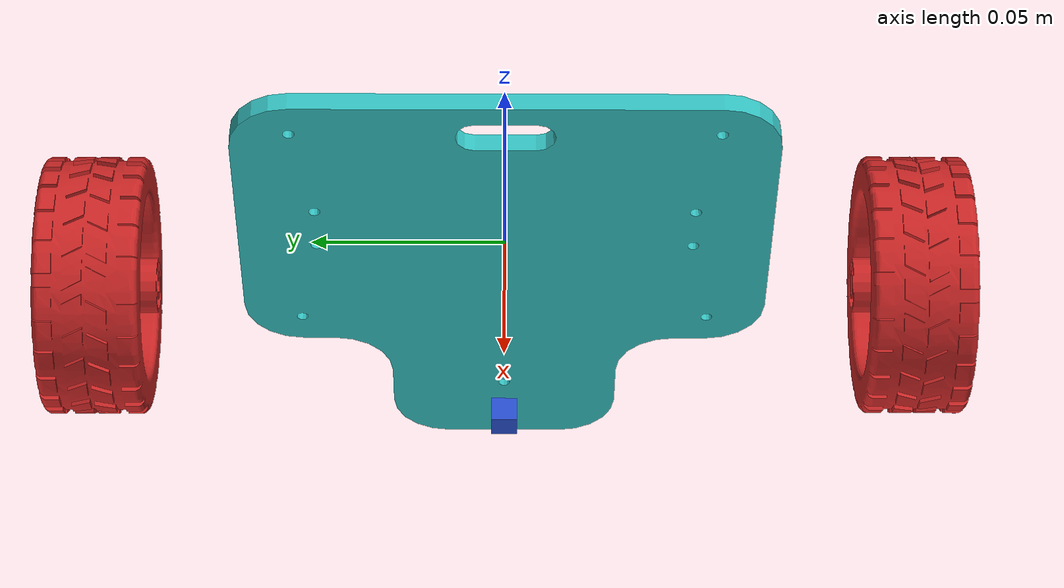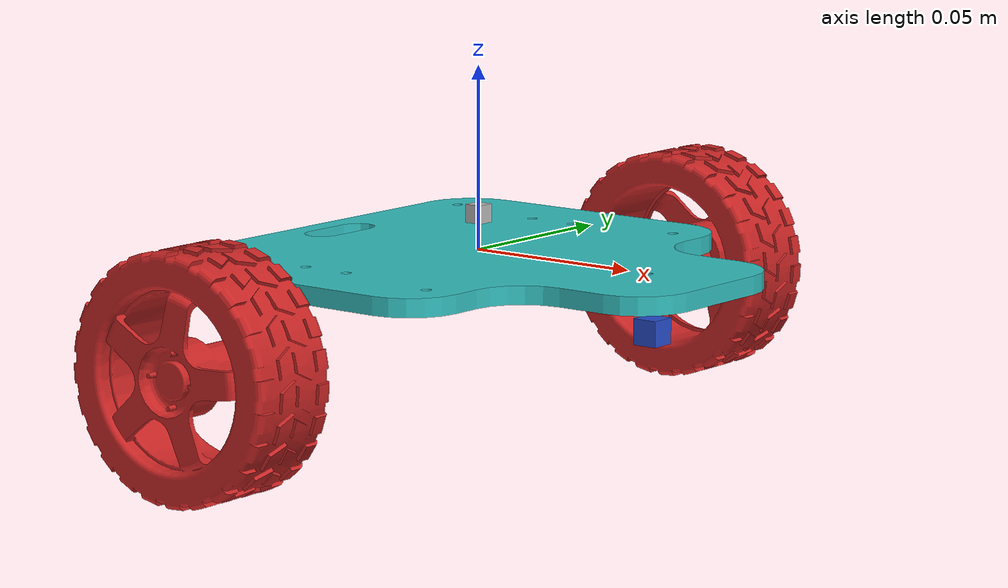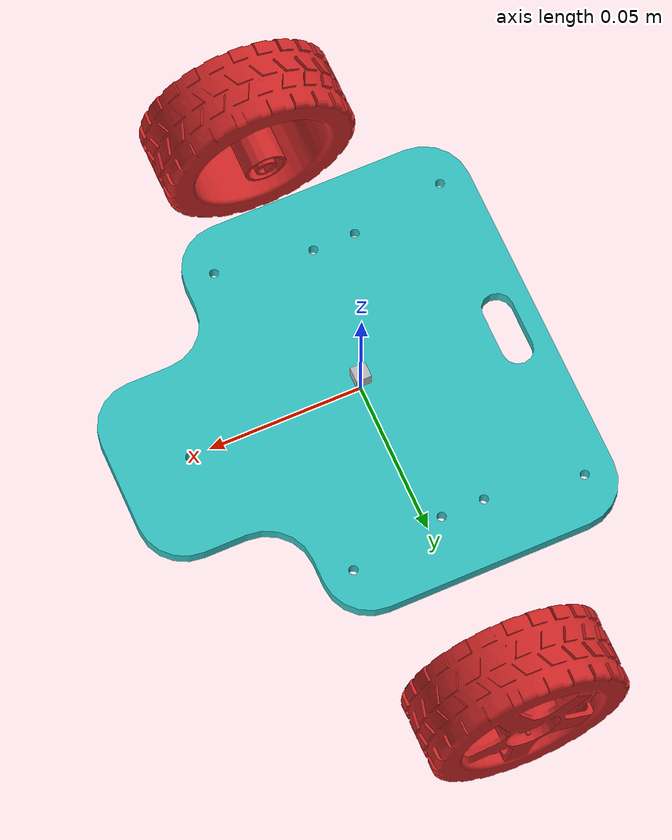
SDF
<sdf version='1.7'>
  <model name='walle'>
    <link name='base_link'>
      <inertial>
        <pose>-0 0 -0.0025 0 -0 0</pose>
        <mass>0.00680000</mass>
        <inertia>
          <ixx>0.000121426</ixx>
          <ixy>1.28749e-19</ixy>
          <ixz>2.00583e-22</ixz>
          <iyy>0.000118984</iyy>
          <iyz>-4.40398e-24</iyz>
          <izz>0.000240029</izz>
        </inertia>
      </inertial>
      <collision name='base_link_collision'>
        <pose>0 0 0 0 -0 0</pose>
        <geometry>
          <mesh>
            <scale>1 1 1</scale>
            <uri>meshes/base_link.STL</uri>
          </mesh>
        </geometry>
      </collision>
      <collision name='base_link_fixed_joint_lump__camera_link_collision_1'>
        <pose>0.058 0 -0.015 0 -0 0</pose>
        <geometry>
          <box>
            <size>0.007 0.007 0.007</size>
          </box>
        </geometry>
        <surface>
          <contact>
            <ode/>
          </contact>
          <friction>
            <ode/>
          </friction>
        </surface>
      </collision>
      <collision name='base_link_fixed_joint_lump__imu_link_collision_2'>
        <pose>0 0 0.01 0 -0 0</pose>
        <geometry>
          <box>
            <size>0.005 0.005 0.005</size>
          </box>
        </geometry>
        <surface>
          <contact>
            <ode/>
          </contact>
          <friction>
            <ode/>
          </friction>
        </surface>
      </collision>
      <visual name='base_link_visual'>
        <pose>0 0 0 0 -0 0</pose>
        <geometry>
          <mesh>
            <scale>1 1 1</scale>
            <uri>meshes/base_link.STL</uri>
          </mesh>
        </geometry>
        <material>
          <script>
            <name>Gazebo/TurquoiseGlowOutline</name>
            <uri>file://media/materials/scripts/gazebo.material</uri>
          </script>
        </material>
      </visual>
      <visual name='base_link_fixed_joint_lump__camera_link_visual_1'>
        <pose>0.058 0 -0.015 0 -0 0</pose>
        <geometry>
          <box>
            <size>0.007 0.007 0.007</size>
          </box>
        </geometry>
         <material>
          <script>
            <name>Gazebo/Blue</name>
            <uri>file://media/materials/scripts/gazebo.material</uri>
          </script>
        </material>
      </visual>
      <visual name='base_link_fixed_joint_lump__imu_link_visual_2'>
        <pose>0 0 0.01 0 -0 0</pose>
        <geometry>
          <box>
             <size>0.005 0.005 0.005</size>
          </box>
        </geometry>
      </visual>
      <sensor name='camera1' type='camera'>
        <update_rate>30</update_rate>
        <camera name='head'>
          <horizontal_fov>1.39626</horizontal_fov>
          <image>
            <width>32</width>
            <height>1</height>
            <format>R8G8B8</format>
          </image>
          <clip>
            <near>0.02</near>
            <far>300</far>
          </clip>
          <noise>
            <type>gaussian</type>
            <mean>0</mean>
            <stddev>0.007</stddev>
          </noise>
        </camera>
        <plugin name='camera_controller' filename='libgazebo_ros_camera.so'>
          <alwaysOn>1</alwaysOn>
          <updateRate>100</updateRate>
          <cameraName>rrbot/camera1</cameraName>
          <imageTopicName>image_raw</imageTopicName>
          <cameraInfoTopicName>camera_info</cameraInfoTopicName>
          <frameName>camera_link</frameName>
          <hackBaseline>0.07</hackBaseline>
          <distortionK1>0.0</distortionK1>
          <distortionK2>0.0</distortionK2>
          <distortionK3>0.0</distortionK3>
          <distortionT1>0.0</distortionT1>
          <distortionT2>0.0</distortionT2>
        </plugin>
        <pose>0 0 0 0 -0 0</pose>
      </sensor>
      <sensor name='imu_sensor' type='imu'>
        <plugin name='imu_plugin' filename='libgazebo_ros_imu_sensor.so'>
          <ros>
            <namespace>/demo</namespace>
            <remapping>~/out:=imu</remapping>
          </ros>
          <initial_orientation_as_reference>0</initial_orientation_as_reference>
        </plugin>
        <always_on>1</always_on>
        <update_rate>100</update_rate>
        <visualize>1</visualize>
        <imu>
          <angular_velocity>
            <x>
              <noise type='gaussian'>
                <mean>0</mean>
                <stddev>0.0002</stddev>
                <bias_mean>7.5e-06</bias_mean>
                <bias_stddev>8e-07</bias_stddev>
              </noise>
            </x>
            <y>
              <noise type='gaussian'>
                <mean>0</mean>
                <stddev>0.0002</stddev>
                <bias_mean>7.5e-06</bias_mean>
                <bias_stddev>8e-07</bias_stddev>
              </noise>
            </y>
            <z>
              <noise type='gaussian'>
                <mean>0</mean>
                <stddev>0.0002</stddev>
                <bias_mean>7.5e-06</bias_mean>
                <bias_stddev>8e-07</bias_stddev>
              </noise>
            </z>
          </angular_velocity>
          <linear_acceleration>
            <x>
              <noise type='gaussian'>
                <mean>0</mean>
                <stddev>0.017</stddev>
                <bias_mean>0.1</bias_mean>
                <bias_stddev>0.001</bias_stddev>
              </noise>
            </x>
            <y>
              <noise type='gaussian'>
                <mean>0</mean>
                <stddev>0.017</stddev>
                <bias_mean>0.1</bias_mean>
                <bias_stddev>0.001</bias_stddev>
              </noise>
            </y>
            <z>
              <noise type='gaussian'>
                <mean>0</mean>
                <stddev>0.017</stddev>
                <bias_mean>0.1</bias_mean>
                <bias_stddev>0.001</bias_stddev>
              </noise>
            </z>
          </linear_acceleration>
        </imu>
        <pose>0 0 0.01 0 -0 0</pose>
      </sensor>
    </link>
    <joint name='leftjoint' type='revolute'>
      <pose relative_to='base_link'>-0.00545 0.10601 -0.017901 0 -0 0</pose>
      <parent>base_link</parent>
      <child>leftlink</child>
      <axis>
        <xyz>0 1 0</xyz>
        <limit>
          <effort>1</effort>
          <velocity>1</velocity>
          <lower>-1e+16</lower>
          <upper>1e+16</upper>
        </limit>
        <dynamics>
          <spring_reference>0</spring_reference>
          <spring_stiffness>0</spring_stiffness>
        </dynamics>
      </axis>
    </joint>
    <link name='leftlink'>
      <pose relative_to='leftjoint'>0 0 0 0 -0 0</pose>
      <inertial>
        <pose>0 -0.01231 0 0 -0 0</pose>
        <mass>0.2110</mass>
        <inertia>
          <ixx>1.22913e-05</ixx>
          <ixy>-4.10833e-11</ixy>
          <ixz>-1.60252e-10</ixz>
          <iyy>2.03788e-05</iyy>
          <iyz>-7.97922e-11</iyz>
          <izz>1.22911e-05</izz>
        </inertia>
      </inertial>
      <collision name='leftlink_collision'>
        <pose>0 0 0 0 -0 0</pose>
        <geometry>
          <mesh>
            <scale>1 1 1</scale>
            <uri>meshes/leftwheel.STL</uri>
          </mesh>
        </geometry>
      </collision>
      <visual name='leftlink_visual'>
        <pose>0 0 0 0 -0 0</pose>
        <geometry>
          <mesh>
            <scale>1 1 1</scale>
            <uri>meshes/leftwheel.STL</uri>
          </mesh>
        </geometry>
        <material>
          <script>
            <name>Gazebo/RedGlow</name>
            <uri>file://media/materials/scripts/gazebo.material</uri>
          </script>
        </material>
      </visual>
    </link>
    <joint name='rightjoint' type='revolute'>
      <pose relative_to='base_link'>-0.006345 -0.10601 -0.017901 0 -0 0</pose>
      <parent>base_link</parent>
      <child>rightlink</child>
      <axis>
        <xyz>0 1 0</xyz>
        <limit>
          <effort>1</effort>
          <velocity>1</velocity>
          <lower>-1e+16</lower>
          <upper>1e+16</upper>
        </limit>
        <dynamics>
          <spring_reference>0</spring_reference>
          <spring_stiffness>0</spring_stiffness>
        </dynamics>
      </axis>
    </joint>
    <link name='rightlink'>
      <pose relative_to='rightjoint'>0 0 0 0 -0 0</pose>
      <inertial>
        <pose>0 0.01231 -0 0 -0 0</pose>
        <mass>0.2110</mass>
        <inertia>
          <ixx>1.22913e-05</ixx>
          <ixy>4.10833e-11</ixy>
          <ixz>1.60252e-10</ixz>
          <iyy>2.03788e-05</iyy>
          <iyz>-7.97922e-11</iyz>
          <izz>1.22911e-05</izz>
        </inertia>
      </inertial>
      <collision name='rightlink_collision'>
        <pose>0 0 0 0 -0 0</pose>
        <geometry>
          <mesh>
            <scale>1 1 1</scale>
            <uri>meshes/rightwheel.STL</uri>
          </mesh>
        </geometry>
      </collision>
      <visual name='rightlink_visual'>
        <pose>0 0 0 0 -0 0</pose>
        <geometry>
          <mesh>
            <scale>1 1 1</scale>
            <uri>meshes/rightwheel.STL</uri>
          </mesh>
        </geometry>
        <material>
          <script>
            <name>Gazebo/RedGlow</name>
            <uri>file://media/materials/scripts/gazebo.material</uri>
          </script>
        </material>
      </visual>
    </link>
    <static>0</static>
     <plugin name="gazebo_ros_control" filename="libgazebo_ros_control.so">
     <ros>
    <namespace>/walle</namespace>
    </ros>
  </plugin>

    <plugin name='diff_drive' filename='libgazebo_ros_diff_drive.so'>
      <ros>
        <namespace>/demo</namespace>
      </ros>
      <left_joint>rightjoint</left_joint>
      <right_joint>leftjoint</right_joint>
      <wheel_separation>0.025</wheel_separation>
      <wheel_diameter>0.2</wheel_diameter>
      <max_wheel_torque>20</max_wheel_torque>
      <max_wheel_acceleration>1.0</max_wheel_acceleration>
      <publish_odom>1</publish_odom>
      <publish_odom_tf>1</publish_odom_tf>
      <publish_wheel_tf>1</publish_wheel_tf>
      <odometry_frame>odom</odometry_frame>
      <robot_base_frame>base_link</robot_base_frame>
    </plugin>
  </model>
</sdf>
